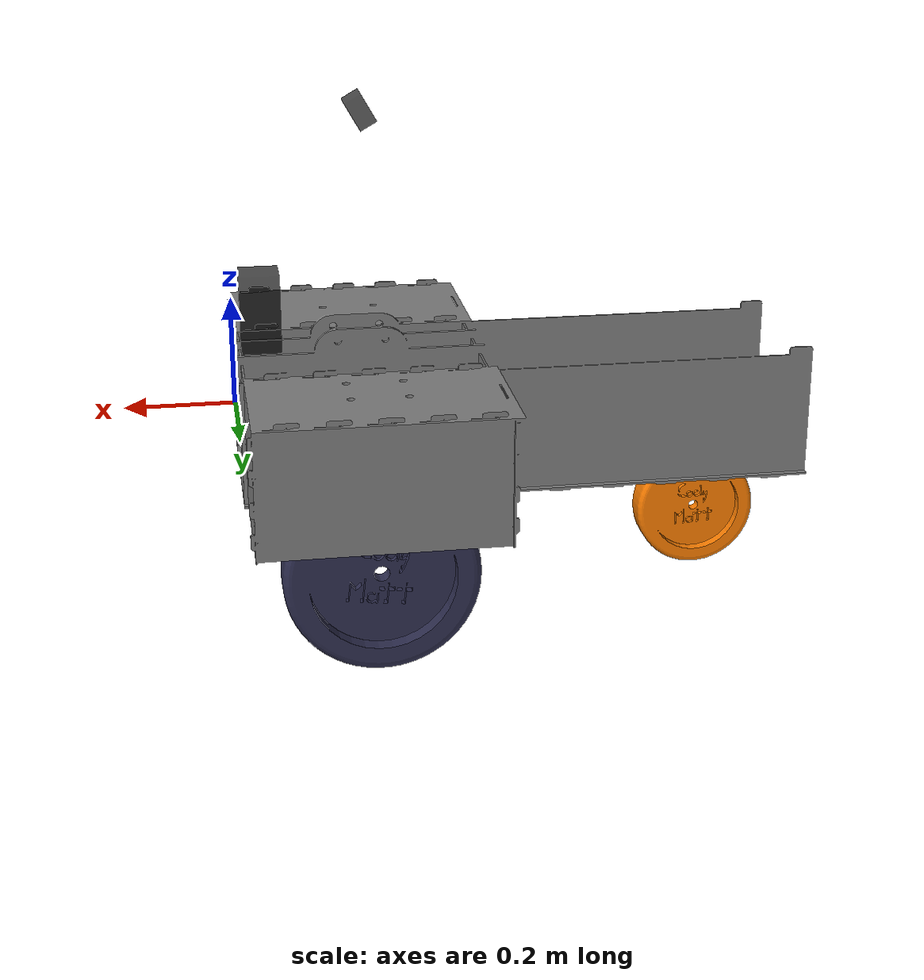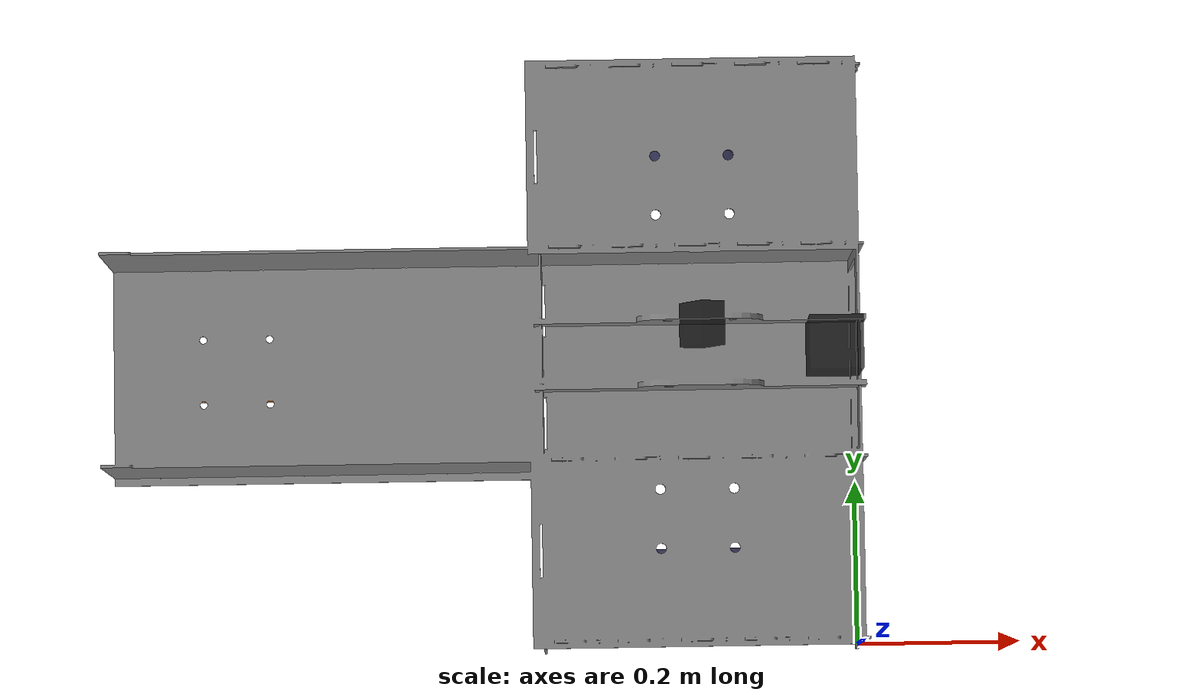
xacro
<?xml version="1.0" ?>

<robot name="igvc" xmlns:xacro="http://ros.org/wiki/xacro">
    <xacro:include filename="$(find robot_description)/urdf/igvc_gazebo.urdf.xacro"/>

    <!-- IGVC Robot -->
    <xacro:macro name="igvc">
        <link name="base_link">
            <inertial>
                <origin xyz="-0.32774 0.34915 0.10574" rpy="0 0 0" />
                <mass value="4.1331" />
                <inertia
                    ixx="0.18727"
                    ixy="-5.4284E-05"
                    ixz="0.022471"
                    iyy="0.28211"
                    iyz="-4.1854E-05"
                    izz="0.4159" />
            </inertial>
            <visual>
                <origin xyz="0 0 0" rpy="0 0 0" />
                <geometry>
                    <mesh filename="package://robot_description/meshes/base_link.STL" />
                </geometry>
                <material name="">
                    <color rgba="0.5 0.5 0.5 1" />
                </material>
            </visual>
            <collision>
                <origin xyz="0 0 0" rpy="0 0 0" />
                <geometry>
                    <mesh filename="package://robot_description/meshes/base_link.STL" />
                </geometry>
            </collision>
        </link>
        <link name="left_wheel_link">
            <inertial>
                <origin xyz="3.359E-05 2.839E-05 0.038042" rpy="0 0 0" />
                <mass value="3.3664" />
                <inertia
                    ixx="0.025859"
                    ixy="1.737E-06"
                    ixz="7.2454E-07"
                    iyy="0.025868"
                    iyz="6.1242E-07"
                    izz="0.049429" />
            </inertial>
            <visual>
                <origin xyz="0 0 0" rpy="0 0 0" />
                <geometry>
                    <mesh filename="package://robot_description/meshes/left_wheel_link.STL" />
                </geometry>
                <material name="">
                    <color rgba="0.18 0.18 0.31 1" />
                </material>
            </visual>
            <collision>
                <origin xyz="0 0 0" rpy="0 0 0" />
                <geometry>
                    <mesh filename="package://robot_description/meshes/left_wheel_link.STL" />
                </geometry>
            </collision>
        </link>
        <joint name="left_wheel_joint" type="continuous">
            <origin xyz="-0.19368 0.58103 -0.060325" rpy="1.5708 0.11459 -3.1416" />
            <parent link="base_link" />
            <child link="left_wheel_link" />
            <axis xyz="0 0 1" />
        </joint>
        <link name="right_wheel_link">
            <inertial>
                <origin xyz="3.359E-05 2.839E-05 -0.038158" rpy="0 0 0" />
                <mass value="3.3664" />
                <inertia
                    ixx="0.025859"
                    ixy="1.737E-06"
                    ixz="7.2454E-07"
                    iyy="0.025868"
                    iyz="6.1242E-07"
                    izz="0.049429" />
            </inertial>
            <visual>
                <origin xyz="0 0 0" rpy="0 0 0" />
                <geometry>
                    <mesh filename="package://robot_description/meshes/right_wheel_link.STL" />
                </geometry>
                <material name="">
                    <color rgba="0.18 0.18 0.31 1" />
                </material>
            </visual>
            <collision>
                <origin xyz="0 0 0" rpy="0 0 0" />
                <geometry>
                    <mesh filename="package://robot_description/meshes/right_wheel_link.STL" />
                </geometry>
            </collision>
        </link>
        <joint name="right_wheel_joint" type="continuous">
            <origin xyz="-0.19368 0.041275 -0.060325" rpy="1.5708 0 0" />
            <parent link="base_link" />
            <child link="right_wheel_link" />
            <axis xyz="0 0 -1" />
        </joint>
        <link name="back_wheel_link">
            <inertial>
                <origin xyz="2.2169E-05 1.8737E-05 0.025108" rpy="0 0 0" />
                <mass value="0.96781" />
                    <inertia
                        ixx="0.0032385"
                        ixy="2.1753E-07"
                        ixz="9.0737E-08"
                        iyy="0.0032396"
                        iyz="7.6695E-08"
                        izz="0.0061901" />
            </inertial>
            <visual>
                <origin xyz="0 0 0" rpy="0 0 0" />
                <geometry>
                    <mesh filename="package://robot_description/meshes/back_wheel_link.STL" />
                </geometry>
                <material name="">
                    <color rgba="1 0.5 0 1" />
                </material>
            </visual>
            <collision>
                <origin xyz="0 0 0" rpy="0 0 0" />
                <geometry>
                    <mesh filename="package://robot_description/meshes/back_wheel_link.STL" />
                </geometry>
            </collision>
        </link>
        <joint name="back_wheel_joint" type="continuous">
            <origin xyz="-0.76733 0.32525 -0.10058" rpy="1.5708 -0.057299 3.1416" />
            <parent link="base_link" />
            <child link="back_wheel_link" />
            <axis xyz="0 0 1" />
        </joint>
        <link name="laser_link">
            <inertial>
                <origin xyz="-6.9389E-18 0 0.0635" rpy="0 0 0" />
                <mass value="0.5121" />
                <inertia
                    ixx="0.00086037"
                    ixy="-3.3902E-20"
                    ixz="0"
                    iyy="0.00086037"
                    iyz="-7.4029E-21"
                    izz="0.00034415" />
            </inertial>
            <visual>
                <origin xyz="0 0 0" rpy="0 0 0" />
                <geometry>
                    <mesh filename="package://robot_description/meshes/laser_link.STL" />
                </geometry>
                <material name="">
                    <color rgba="0 0 0 .7" />
                </material>
            </visual>
            <collision>
                <origin xyz="0 0 0" rpy="0 0 0" />
                <geometry>
                    <mesh filename="package://robot_description/meshes/laser_link.STL" />
                </geometry>
            </collision>
        </link>
        <joint name="laser_joint" type="fixed">
            <origin xyz="-0.034925 0.34722 0.34608" rpy="3.1416 0 0" />
            <parent link="base_link" />
            <child link="laser_link" />
            <axis xyz="0 0 0" />
        </joint>
        <link name="camera_link">
            <visual>
                <origin xyz="0 0 0" rpy="0 0 0" />
                <geometry>
                    <box size=".03 .05 .05"/>
                </geometry>
                <material name="">
                    <color rgba="0 0 0 .7" />
                </material>
            </visual>
            <collision>
                <origin xyz="0 0 0" rpy="0 0 0" />
                <geometry>
                    <box size=".03 .05 .05"/>
                </geometry>
            </collision>
        </link>
        <joint name="camera_joint" type="fixed">
            <origin xyz="-0.20 0.34722 .6" rpy="0 0.5235 0"/>
            <parent link="base_link"/>
            <child link="camera_link"/>
            <axis xyz="0 0 0" />
        </joint>

        <igvc_sim/>
    </xacro:macro>

    <igvc/>
</robot>
